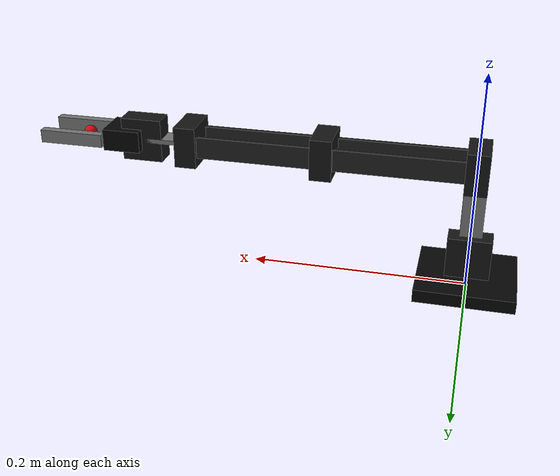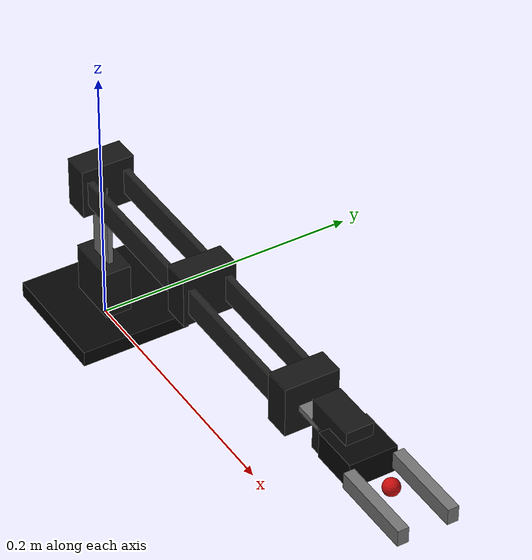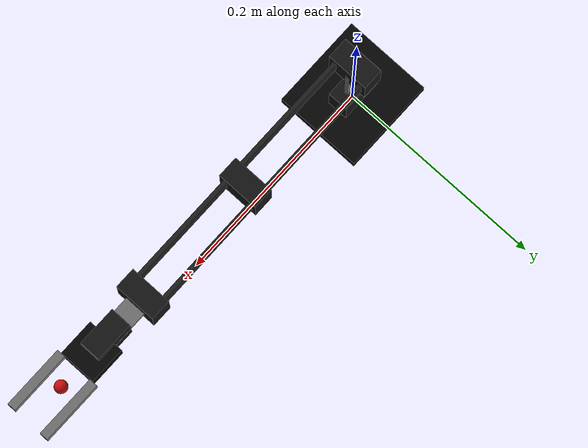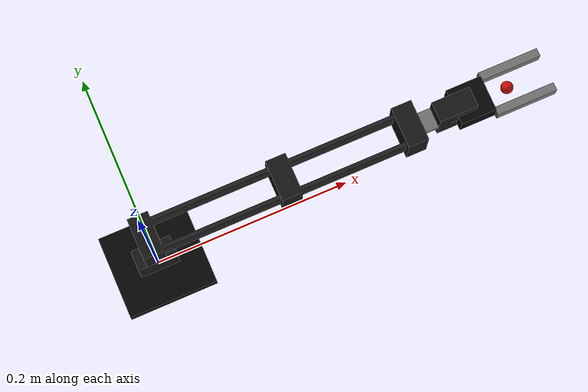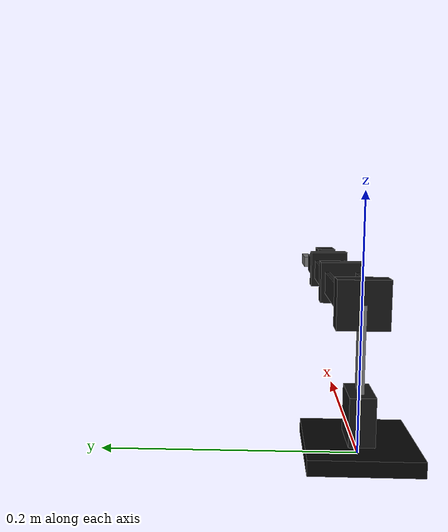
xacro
<?xml version="1.0"?>
<robot xmlns:xacro="http://ros.org/wiki/xacro" name="my_arm">

  <xacro:arg name="ros2_control_params" default=""/>
  <xacro:arg name="hardware_plugin" default="fake_components/GenericSystem"/>
  <xacro:arg name="use_gazebo_plugin" default="false"/>

  <!-- Base plate dimensions from the drawing: 9.0 cm x 8.4 cm -->
  <xacro:arg name="base_x" default="0.090"/>
  <xacro:arg name="base_y" default="0.084"/>
  <xacro:arg name="base_z" default="0.012"/>

  <!-- Approximate arm dimensions tuned to match ~31.3 cm horizontal reach and ~50.5 cm max height -->
  <xacro:arg name="L1" default="0.105"/>   <!-- base plate to shoulder axis -->
  <xacro:arg name="L2" default="0.135"/>   <!-- upper arm -->
  <xacro:arg name="L3" default="0.125"/>   <!-- forearm -->
  <xacro:arg name="L4" default="0.045"/>   <!-- wrist support -->
  <xacro:arg name="tool_x" default="0.055"/> <!-- gripper/tool offset -->

  <!-- Visual dimensions -->
  <xacro:arg name="servo_x" default="0.040"/>
  <xacro:arg name="servo_y" default="0.020"/>
  <xacro:arg name="servo_z" default="0.038"/>
  <xacro:arg name="plate_thickness" default="0.004"/>
  <xacro:arg name="link_width" default="0.020"/>
  <xacro:arg name="finger_length" default="0.060"/>

  <xacro:property name="base_x" value="$(arg base_x)"/>
  <xacro:property name="base_y" value="$(arg base_y)"/>
  <xacro:property name="base_z" value="$(arg base_z)"/>
  <xacro:property name="L1" value="$(arg L1)"/>
  <xacro:property name="L2" value="$(arg L2)"/>
  <xacro:property name="L3" value="$(arg L3)"/>
  <xacro:property name="L4" value="$(arg L4)"/>
  <xacro:property name="tool_x" value="$(arg tool_x)"/>
  <xacro:property name="servo_x" value="$(arg servo_x)"/>
  <xacro:property name="servo_y" value="$(arg servo_y)"/>
  <xacro:property name="servo_z" value="$(arg servo_z)"/>
  <xacro:property name="plate_t" value="$(arg plate_thickness)"/>
  <xacro:property name="link_w" value="$(arg link_width)"/>
  <xacro:property name="finger_l" value="$(arg finger_length)"/>

  <material name="black"><color rgba="0.02 0.02 0.02 1.0"/></material>
  <material name="dark_grey"><color rgba="0.12 0.12 0.12 1.0"/></material>
  <material name="metal"><color rgba="0.45 0.45 0.45 1.0"/></material>
  <material name="servo"><color rgba="0.08 0.08 0.08 1.0"/></material>
  <material name="orange"><color rgba="1.00 0.35 0.05 1.0"/></material>
  <material name="red"><color rgba="0.80 0.05 0.05 1.0"/></material>

  <xacro:macro name="inertial_box" params="mass x y z">
    <inertial>
      <mass value="${mass}"/>
      <inertia ixx="${mass*(y*y+z*z)/12.0}" ixy="0" ixz="0"
               iyy="${mass*(x*x+z*z)/12.0}" iyz="0"
               izz="${mass*(x*x+y*y)/12.0}"/>
    </inertial>
  </xacro:macro>

  <xacro:macro name="box_visual_collision" params="name x y z ox oy oz material">
    <visual name="${name}_visual">
      <origin xyz="${ox} ${oy} ${oz}" rpy="0 0 0"/>
      <geometry><box size="${x} ${y} ${z}"/></geometry>
      <material name="${material}"/>
    </visual>
    <collision name="${name}_collision">
      <origin xyz="${ox} ${oy} ${oz}" rpy="0 0 0"/>
      <geometry><box size="${x} ${y} ${z}"/></geometry>
    </collision>
  </xacro:macro>

  <link name="world"/>

  <joint name="world_to_base" type="fixed">
    <parent link="world"/>
    <child link="base_link"/>
    <origin xyz="0 0 0" rpy="0 0 0"/>
  </joint>

  <!-- Base plate, 90 x 84 mm -->
  <link name="base_link">
    <xacro:box_visual_collision name="base_plate" x="${base_x}" y="${base_y}" z="${base_z}"
                                 ox="0" oy="0" oz="${base_z/2.0}" material="black"/>
    <!-- Raised rotating block -->
    <visual name="base_servo_visual">
      <origin xyz="0 0 ${base_z + servo_z/2.0}" rpy="0 0 0"/>
      <geometry><box size="${servo_x} ${servo_y} ${servo_z}"/></geometry>
      <material name="servo"/>
    </visual>
    <collision name="base_servo_collision">
      <origin xyz="0 0 ${base_z + servo_z/2.0}" rpy="0 0 0"/>
      <geometry><box size="${servo_x} ${servo_y} ${servo_z}"/></geometry>
    </collision>
    <xacro:inertial_box mass="0.18" x="${base_x}" y="${base_y}" z="${base_z}"/>
  </link>

  <!-- Vertical bracket from base servo to shoulder axis -->
  <link name="link1">
    <xacro:box_visual_collision name="vertical_bracket" x="${link_w}" y="${plate_t}" z="${L1}"
                                 ox="0" oy="0" oz="${L1/2.0}" material="metal"/>
    <visual name="shoulder_servo_visual">
      <origin xyz="0 0 ${L1}" rpy="0 0 0"/>
      <geometry><box size="${servo_y} ${servo_x} ${servo_z}"/></geometry>
      <material name="servo"/>
    </visual>
    <collision name="shoulder_servo_collision">
      <origin xyz="0 0 ${L1}" rpy="0 0 0"/>
      <geometry><box size="${servo_y} ${servo_x} ${servo_z}"/></geometry>
    </collision>
    <xacro:inertial_box mass="0.08" x="${link_w}" y="${plate_t}" z="${L1}"/>
  </link>

  <!-- Upper arm: two side plates along +X -->
  <link name="link2">
    <xacro:box_visual_collision name="upper_left_plate" x="${L2}" y="${plate_t}" z="${link_w}"
                                 ox="${L2/2.0}" oy="0.014" oz="0" material="dark_grey"/>
    <xacro:box_visual_collision name="upper_right_plate" x="${L2}" y="${plate_t}" z="${link_w}"
                                 ox="${L2/2.0}" oy="-0.014" oz="0" material="dark_grey"/>
    <visual name="elbow_servo_visual">
      <origin xyz="${L2} 0 0" rpy="0 0 0"/>
      <geometry><box size="${servo_y} ${servo_x} ${servo_z}"/></geometry>
      <material name="servo"/>
    </visual>
    <collision name="elbow_servo_collision">
      <origin xyz="${L2} 0 0" rpy="0 0 0"/>
      <geometry><box size="${servo_y} ${servo_x} ${servo_z}"/></geometry>
    </collision>
    <xacro:inertial_box mass="0.09" x="${L2}" y="0.032" z="${link_w}"/>
  </link>

  <!-- Forearm: two side plates along +X -->
  <link name="link3">
    <xacro:box_visual_collision name="forearm_left_plate" x="${L3}" y="${plate_t}" z="${link_w}"
                                 ox="${L3/2.0}" oy="0.014" oz="0" material="dark_grey"/>
    <xacro:box_visual_collision name="forearm_right_plate" x="${L3}" y="${plate_t}" z="${link_w}"
                                 ox="${L3/2.0}" oy="-0.014" oz="0" material="dark_grey"/>
    <visual name="wrist_pitch_servo_visual">
      <origin xyz="${L3} 0 0" rpy="0 0 0"/>
      <geometry><box size="${servo_y} ${servo_x} ${servo_z}"/></geometry>
      <material name="servo"/>
    </visual>
    <collision name="wrist_pitch_servo_collision">
      <origin xyz="${L3} 0 0" rpy="0 0 0"/>
      <geometry><box size="${servo_y} ${servo_x} ${servo_z}"/></geometry>
    </collision>
    <xacro:inertial_box mass="0.08" x="${L3}" y="0.032" z="${link_w}"/>
  </link>

  <!-- Wrist pitch link -->
  <link name="link4">
    <xacro:box_visual_collision name="wrist_support" x="${L4}" y="${link_w}" z="${plate_t}"
                                 ox="${L4/2.0}" oy="0" oz="0" material="metal"/>
    <visual name="wrist_roll_servo_visual">
      <origin xyz="${L4} 0 0" rpy="0 0 0"/>
      <geometry><box size="${servo_z} ${servo_y} ${servo_x}"/></geometry>
      <material name="servo"/>
    </visual>
    <collision name="wrist_roll_servo_collision">
      <origin xyz="${L4} 0 0" rpy="0 0 0"/>
      <geometry><box size="${servo_z} ${servo_y} ${servo_x}"/></geometry>
    </collision>
    <xacro:inertial_box mass="0.05" x="${L4}" y="${link_w}" z="${plate_t}"/>
  </link>

  <!-- Gripper palm -->
  <link name="link5">
    <xacro:box_visual_collision name="gripper_palm" x="0.035" y="0.035" z="0.020"
                                 ox="0.0175" oy="0" oz="0" material="black"/>
    <xacro:inertial_box mass="0.04" x="0.035" y="0.035" z="0.020"/>
  </link>

  <!-- Left moving gripper finger controlled by joint6 -->
  <link name="link6">
    <visual name="left_finger_visual">
      <origin xyz="${finger_l/2.0} 0.018 0" rpy="0 0 0"/>
      <geometry><box size="${finger_l} 0.008 0.012"/></geometry>
      <material name="metal"/>
    </visual>
    <collision name="left_finger_collision">
      <origin xyz="${finger_l/2.0} 0.018 0" rpy="0 0 0"/>
      <geometry><box size="${finger_l} 0.008 0.012"/></geometry>
    </collision>
    <xacro:inertial_box mass="0.01" x="${finger_l}" y="0.008" z="0.012"/>
  </link>

  <!-- Right fixed gripper finger, approximate. Can be made actuated later if needed. -->
  <link name="link6_right">
    <visual name="right_finger_visual">
      <origin xyz="${finger_l/2.0} -0.018 0" rpy="0 0 0"/>
      <geometry><box size="${finger_l} 0.008 0.012"/></geometry>
      <material name="metal"/>
    </visual>
    <collision name="right_finger_collision">
      <origin xyz="${finger_l/2.0} -0.018 0" rpy="0 0 0"/>
      <geometry><box size="${finger_l} 0.008 0.012"/></geometry>
    </collision>
    <xacro:inertial_box mass="0.01" x="${finger_l}" y="0.008" z="0.012"/>
  </link>

  <link name="tool">
    <visual>
      <geometry><sphere radius="0.006"/></geometry>
      <material name="red"/>
    </visual>
    <collision>
      <geometry><sphere radius="0.006"/></geometry>
    </collision>
    <xacro:inertial_box mass="0.001" x="0.006" y="0.006" z="0.006"/>
  </link>

  <!-- Joints -->

  <joint name="joint1" type="revolute">
    <parent link="base_link"/>
    <child link="link1"/>
    <origin xyz="0 0 ${base_z}" rpy="0 0 0"/>
    <axis xyz="0 0 1"/>
    <limit lower="-1.5708" upper="1.5708" effort="1.0" velocity="1.0"/>
  </joint>

  <joint name="joint2" type="revolute">
    <parent link="link1"/>
    <child link="link2"/>
    <origin xyz="0 0 ${L1}" rpy="0 0 0"/>
    <axis xyz="0 1 0"/>
    <limit lower="-1.5708" upper="1.5708" effort="1.0" velocity="1.0"/>
  </joint>

  <joint name="joint3" type="revolute">
    <parent link="link2"/>
    <child link="link3"/>
    <origin xyz="${L2} 0 0" rpy="0 0 0"/>
    <axis xyz="0 1 0"/>
    <limit lower="-1.5708" upper="1.5708" effort="1.0" velocity="1.0"/>
  </joint>

  <joint name="joint4" type="revolute">
    <parent link="link3"/>
    <child link="link4"/>
    <origin xyz="${L3} 0 0" rpy="0 0 0"/>
    <axis xyz="0 1 0"/>
    <limit lower="-1.5708" upper="1.5708" effort="1.0" velocity="1.0"/>
  </joint>

  <joint name="joint5" type="revolute">
    <parent link="link4"/>
    <child link="link5"/>
    <origin xyz="${L4} 0 0" rpy="0 0 0"/>
    <axis xyz="1 0 0"/>
    <limit lower="-1.5708" upper="1.5708" effort="1.0" velocity="1.0"/>
  </joint>

  <!-- Gripper servo. Revolute is kept because the real SG90 is commanded as an angular servo. -->
  <joint name="joint6" type="revolute">
    <parent link="link5"/>
    <child link="link6"/>
    <origin xyz="0.035 0 0" rpy="0 0 0"/>
    <axis xyz="0 0 1"/>
    <limit lower="0.0" upper="0.7854" effort="0.5" velocity="1.0"/>
  </joint>

  <joint name="joint6_right" type="fixed">
    <parent link="link5"/>
    <child link="link6_right"/>
    <origin xyz="0.035 0 0" rpy="0 0 0"/>
  </joint>

  <joint name="link5_to_tool" type="fixed">
    <parent link="link5"/>
    <child link="tool"/>
    <origin xyz="${tool_x} 0 0" rpy="0 0 0"/>
  </joint>

  <!-- ros2_control -->
  <ros2_control name="MyArmMecanumSystem" type="system">
    <hardware>
      <plugin>$(arg hardware_plugin)</plugin>
    </hardware>

    <joint name="joint1">
      <command_interface name="position"/>
      <state_interface name="position"/>
      <state_interface name="velocity"/>
    </joint>
    <joint name="joint2">
      <command_interface name="position"/>
      <state_interface name="position"/>
      <state_interface name="velocity"/>
    </joint>
    <joint name="joint3">
      <command_interface name="position"/>
      <state_interface name="position"/>
      <state_interface name="velocity"/>
    </joint>
    <joint name="joint4">
      <command_interface name="position"/>
      <state_interface name="position"/>
      <state_interface name="velocity"/>
    </joint>
    <joint name="joint5">
      <command_interface name="position"/>
      <state_interface name="position"/>
      <state_interface name="velocity"/>
    </joint>
    <joint name="joint6">
      <command_interface name="position"/>
      <state_interface name="position"/>
      <state_interface name="velocity"/>
    </joint>
  </ros2_control>

  <xacro:if value="$(arg use_gazebo_plugin)">
    <gazebo>
      <plugin name="gz_ros2_control::GazeboSimROS2ControlPlugin"
              filename="gz_ros2_control-system">
        <parameters>$(arg ros2_control_params)</parameters>
      </plugin>
    </gazebo>
  </xacro:if>

</robot>
